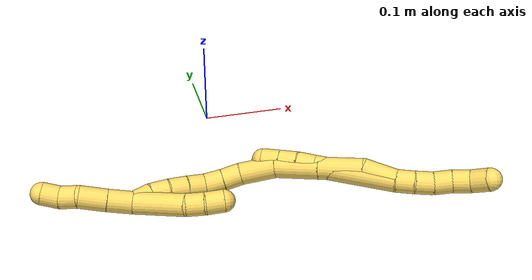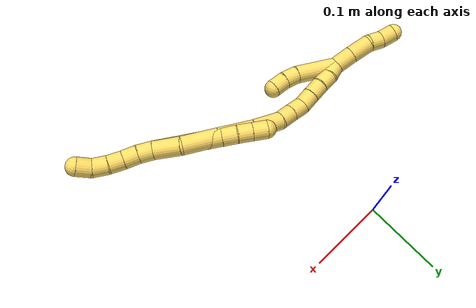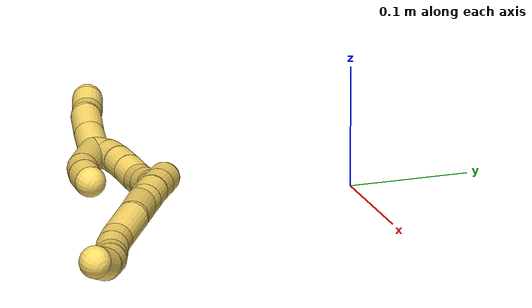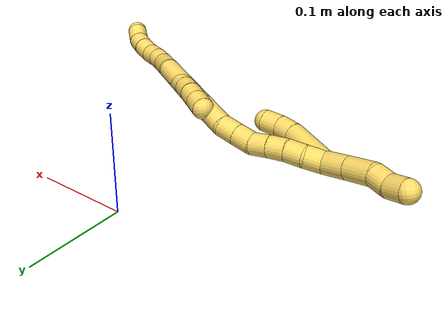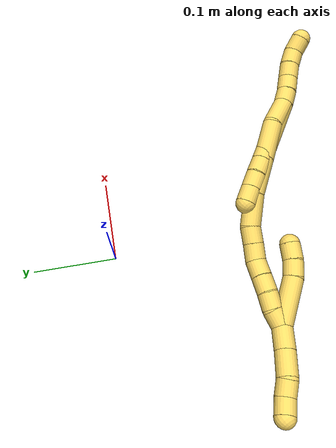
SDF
<sdf version="1.7">
 <world name="default">
  <model name="5">
   <static>0</static>
   <link name="5">
    <collision name="collision-cylinder-e_1_2_8">
     <pose>-0.033735 0.014372 -0.025877 -2.63461 -0.850586 2.10249</pose>
     <geometry><cylinder><radius>0.0125</radius><length>0.089761</length></cylinder></geometry>
     <surface>
      <friction><ode><mu>1.16</mu><mu2>1.16</mu2><slip1>0</slip1><slip2>0</slip2></ode></friction>
      <contact><ode><kp>1e+06</kp><kd>1</kd><max_vel>0</max_vel><min_depth>0.001</min_depth></ode></contact>
     </surface>
    </collision>
    <visual name="visual-cylinder-e_1_2_8">
     <pose>-0.033735 0.014372 -0.025877 -2.63461 -0.850586 2.10249</pose>
     <geometry><cylinder><radius>0.0125</radius><length>0.089761</length></cylinder></geometry>
     <material><ambient>1 0.858824 0.4 1</ambient></material>
    </visual>
    <collision name="collision-cylinder-e_2_8_9">
     <pose>-0.075159 0.031848 -0.057519 -2.64776 -0.865401 2.1425</pose>
     <geometry><cylinder><radius>0.0125</radius><length>0.020196</length></cylinder></geometry>
     <surface>
      <friction><ode><mu>1.16</mu><mu2>1.16</mu2><slip1>0</slip1><slip2>0</slip2></ode></friction>
      <contact><ode><kp>1e+06</kp><kd>1</kd><max_vel>0</max_vel><min_depth>0.001</min_depth></ode></contact>
     </surface>
    </collision>
    <visual name="visual-cylinder-e_2_8_9">
     <pose>-0.075159 0.031848 -0.057519 -2.64776 -0.865401 2.1425</pose>
     <geometry><cylinder><radius>0.0125</radius><length>0.020196</length></cylinder></geometry>
     <material><ambient>1 0.858824 0.4 1</ambient></material>
    </visual>
    <collision name="collision-cylinder-e_3_9_10">
     <pose>-0.090067 0.038986 -0.068912 -2.51958 -0.806276 1.84991</pose>
     <geometry><cylinder><radius>0.0125</radius><length>0.020008</length></cylinder></geometry>
     <surface>
      <friction><ode><mu>1.16</mu><mu2>1.16</mu2><slip1>0</slip1><slip2>0</slip2></ode></friction>
      <contact><ode><kp>1e+06</kp><kd>1</kd><max_vel>0</max_vel><min_depth>0.001</min_depth></ode></contact>
     </surface>
    </collision>
    <visual name="visual-cylinder-e_3_9_10">
     <pose>-0.090067 0.038986 -0.068912 -2.51958 -0.806276 1.84991</pose>
     <geometry><cylinder><radius>0.0125</radius><length>0.020008</length></cylinder></geometry>
     <material><ambient>1 0.858824 0.4 1</ambient></material>
    </visual>
    <collision name="collision-cylinder-e_4_10_6">
     <pose>-0.104512 0.047063 -0.080179 -2.5197 -0.805569 1.84915</pose>
     <geometry><cylinder><radius>0.0125</radius><length>0.020035</length></cylinder></geometry>
     <surface>
      <friction><ode><mu>1.16</mu><mu2>1.16</mu2><slip1>0</slip1><slip2>0</slip2></ode></friction>
      <contact><ode><kp>1e+06</kp><kd>1</kd><max_vel>0</max_vel><min_depth>0.001</min_depth></ode></contact>
     </surface>
    </collision>
    <visual name="visual-cylinder-e_4_10_6">
     <pose>-0.104512 0.047063 -0.080179 -2.5197 -0.805569 1.84915</pose>
     <geometry><cylinder><radius>0.0125</radius><length>0.020035</length></cylinder></geometry>
     <material><ambient>1 0.858824 0.4 1</ambient></material>
    </visual>
    <collision name="collision-cylinder-e_1_2_11">
     <pose>0.0068 -0.003673 0.006346 0.524634 0.747696 0.209892</pose>
     <geometry><cylinder><radius>0.0125</radius><length>0.02</length></cylinder></geometry>
     <surface>
      <friction><ode><mu>1.16</mu><mu2>1.16</mu2><slip1>0</slip1><slip2>0</slip2></ode></friction>
      <contact><ode><kp>1e+06</kp><kd>1</kd><max_vel>0</max_vel><min_depth>0.001</min_depth></ode></contact>
     </surface>
    </collision>
    <visual name="visual-cylinder-e_1_2_11">
     <pose>0.0068 -0.003673 0.006346 0.524634 0.747696 0.209892</pose>
     <geometry><cylinder><radius>0.0125</radius><length>0.02</length></cylinder></geometry>
     <material><ambient>1 0.858824 0.4 1</ambient></material>
    </visual>
    <collision name="collision-cylinder-e_2_11_12">
     <pose>0.019625 -0.010717 0.019926 0.436155 0.646776 0.148269</pose>
     <geometry><cylinder><radius>0.0125</radius><length>0.02</length></cylinder></geometry>
     <surface>
      <friction><ode><mu>1.16</mu><mu2>1.16</mu2><slip1>0</slip1><slip2>0</slip2></ode></friction>
      <contact><ode><kp>1e+06</kp><kd>1</kd><max_vel>0</max_vel><min_depth>0.001</min_depth></ode></contact>
     </surface>
    </collision>
    <visual name="visual-cylinder-e_2_11_12">
     <pose>0.019625 -0.010717 0.019926 0.436155 0.646776 0.148269</pose>
     <geometry><cylinder><radius>0.0125</radius><length>0.02</length></cylinder></geometry>
     <material><ambient>1 0.858824 0.4 1</ambient></material>
    </visual>
    <collision name="collision-cylinder-e_3_12_13">
     <pose>0.031037 -0.019102 0.033931 0.637263 0.568701 0.192229</pose>
     <geometry><cylinder><radius>0.0125</radius><length>0.02</length></cylinder></geometry>
     <surface>
      <friction><ode><mu>1.16</mu><mu2>1.16</mu2><slip1>0</slip1><slip2>0</slip2></ode></friction>
      <contact><ode><kp>1e+06</kp><kd>1</kd><max_vel>0</max_vel><min_depth>0.001</min_depth></ode></contact>
     </surface>
    </collision>
    <visual name="visual-cylinder-e_3_12_13">
     <pose>0.031037 -0.019102 0.033931 0.637263 0.568701 0.192229</pose>
     <geometry><cylinder><radius>0.0125</radius><length>0.02</length></cylinder></geometry>
     <material><ambient>1 0.858824 0.4 1</ambient></material>
    </visual>
    <collision name="collision-cylinder-e_4_13_14">
     <pose>0.042957 -0.028892 0.046576 0.682855 0.712128 0.262793</pose>
     <geometry><cylinder><radius>0.0125</radius><length>0.02</length></cylinder></geometry>
     <surface>
      <friction><ode><mu>1.16</mu><mu2>1.16</mu2><slip1>0</slip1><slip2>0</slip2></ode></friction>
      <contact><ode><kp>1e+06</kp><kd>1</kd><max_vel>0</max_vel><min_depth>0.001</min_depth></ode></contact>
     </surface>
    </collision>
    <visual name="visual-cylinder-e_4_13_14">
     <pose>0.042957 -0.028892 0.046576 0.682855 0.712128 0.262793</pose>
     <geometry><cylinder><radius>0.0125</radius><length>0.02</length></cylinder></geometry>
     <material><ambient>1 0.858824 0.4 1</ambient></material>
    </visual>
    <collision name="collision-cylinder-e_5_14_5">
     <pose>0.056297 -0.040294 0.055576 1.12975 0.748617 0.487999</pose>
     <geometry><cylinder><radius>0.0125</radius><length>0.02</length></cylinder></geometry>
     <surface>
      <friction><ode><mu>1.16</mu><mu2>1.16</mu2><slip1>0</slip1><slip2>0</slip2></ode></friction>
      <contact><ode><kp>1e+06</kp><kd>1</kd><max_vel>0</max_vel><min_depth>0.001</min_depth></ode></contact>
     </surface>
    </collision>
    <visual name="visual-cylinder-e_5_14_5">
     <pose>0.056297 -0.040294 0.055576 1.12975 0.748617 0.487999</pose>
     <geometry><cylinder><radius>0.0125</radius><length>0.02</length></cylinder></geometry>
     <material><ambient>1 0.858824 0.4 1</ambient></material>
    </visual>
    <collision name="collision-cylinder-e_1_2_15">
     <pose>-0.015342 0.003586 -0.009769 -2.78975 -0.974787 2.49443</pose>
     <geometry><cylinder><radius>0.0125</radius><length>0.037077</length></cylinder></geometry>
     <surface>
      <friction><ode><mu>1.16</mu><mu2>1.16</mu2><slip1>0</slip1><slip2>0</slip2></ode></friction>
      <contact><ode><kp>1e+06</kp><kd>1</kd><max_vel>0</max_vel><min_depth>0.001</min_depth></ode></contact>
     </surface>
    </collision>
    <visual name="visual-cylinder-e_1_2_15">
     <pose>-0.015342 0.003586 -0.009769 -2.78975 -0.974787 2.49443</pose>
     <geometry><cylinder><radius>0.0125</radius><length>0.037077</length></cylinder></geometry>
     <material><ambient>1 0.858824 0.4 1</ambient></material>
    </visual>
    <collision name="collision-cylinder-e_2_15_16">
     <pose>-0.046846 0.01758 -0.034746 -2.54149 -0.719964 1.76554</pose>
     <geometry><cylinder><radius>0.0125</radius><length>0.049022</length></cylinder></geometry>
     <surface>
      <friction><ode><mu>1.16</mu><mu2>1.16</mu2><slip1>0</slip1><slip2>0</slip2></ode></friction>
      <contact><ode><kp>1e+06</kp><kd>1</kd><max_vel>0</max_vel><min_depth>0.001</min_depth></ode></contact>
     </surface>
    </collision>
    <visual name="visual-cylinder-e_2_15_16">
     <pose>-0.046846 0.01758 -0.034746 -2.54149 -0.719964 1.76554</pose>
     <geometry><cylinder><radius>0.0125</radius><length>0.049022</length></cylinder></geometry>
     <material><ambient>1 0.858824 0.4 1</ambient></material>
    </visual>
    <collision name="collision-cylinder-e_3_16_17">
     <pose>-0.079161 0.038313 -0.064831 -2.53482 -0.728384 1.76648</pose>
     <geometry><cylinder><radius>0.0125</radius><length>0.048533</length></cylinder></geometry>
     <surface>
      <friction><ode><mu>1.16</mu><mu2>1.16</mu2><slip1>0</slip1><slip2>0</slip2></ode></friction>
      <contact><ode><kp>1e+06</kp><kd>1</kd><max_vel>0</max_vel><min_depth>0.001</min_depth></ode></contact>
     </surface>
    </collision>
    <visual name="visual-cylinder-e_3_16_17">
     <pose>-0.079161 0.038313 -0.064831 -2.53482 -0.728384 1.76648</pose>
     <geometry><cylinder><radius>0.0125</radius><length>0.048533</length></cylinder></geometry>
     <material><ambient>1 0.858824 0.4 1</ambient></material>
    </visual>
    <collision name="collision-cylinder-e_4_17_18">
     <pose>-0.105197 0.060302 -0.092991 -2.42108 -0.509794 1.21028</pose>
     <geometry><cylinder><radius>0.0125</radius><length>0.040504</length></cylinder></geometry>
     <surface>
      <friction><ode><mu>1.16</mu><mu2>1.16</mu2><slip1>0</slip1><slip2>0</slip2></ode></friction>
      <contact><ode><kp>1e+06</kp><kd>1</kd><max_vel>0</max_vel><min_depth>0.001</min_depth></ode></contact>
     </surface>
    </collision>
    <visual name="visual-cylinder-e_4_17_18">
     <pose>-0.105197 0.060302 -0.092991 -2.42108 -0.509794 1.21028</pose>
     <geometry><cylinder><radius>0.0125</radius><length>0.040504</length></cylinder></geometry>
     <material><ambient>1 0.858824 0.4 1</ambient></material>
    </visual>
    <collision name="collision-cylinder-e_5_18_19">
     <pose>-0.117797 0.077497 -0.114864 -2.56935 -0.259879 0.836014</pose>
     <geometry><cylinder><radius>0.0125</radius><length>0.021144</length></cylinder></geometry>
     <surface>
      <friction><ode><mu>1.16</mu><mu2>1.16</mu2><slip1>0</slip1><slip2>0</slip2></ode></friction>
      <contact><ode><kp>1e+06</kp><kd>1</kd><max_vel>0</max_vel><min_depth>0.001</min_depth></ode></contact>
     </surface>
    </collision>
    <visual name="visual-cylinder-e_5_18_19">
     <pose>-0.117797 0.077497 -0.114864 -2.56935 -0.259879 0.836014</pose>
     <geometry><cylinder><radius>0.0125</radius><length>0.021144</length></cylinder></geometry>
     <material><ambient>1 0.858824 0.4 1</ambient></material>
    </visual>
    <collision name="collision-cylinder-e_6_19_20">
     <pose>-0.123897 0.088198 -0.132213 -2.60858 -0.321154 1.07096</pose>
     <geometry><cylinder><radius>0.0125</radius><length>0.021439</length></cylinder></geometry>
     <surface>
      <friction><ode><mu>1.16</mu><mu2>1.16</mu2><slip1>0</slip1><slip2>0</slip2></ode></friction>
      <contact><ode><kp>1e+06</kp><kd>1</kd><max_vel>0</max_vel><min_depth>0.001</min_depth></ode></contact>
     </surface>
    </collision>
    <visual name="visual-cylinder-e_6_19_20">
     <pose>-0.123897 0.088198 -0.132213 -2.60858 -0.321154 1.07096</pose>
     <geometry><cylinder><radius>0.0125</radius><length>0.021439</length></cylinder></geometry>
     <material><ambient>1 0.858824 0.4 1</ambient></material>
    </visual>
    <collision name="collision-cylinder-e_7_20_21">
     <pose>-0.129702 0.095369 -0.150746 -2.93948 -0.238132 1.73536</pose>
     <geometry><cylinder><radius>0.0125</radius><length>0.02053</length></cylinder></geometry>
     <surface>
      <friction><ode><mu>1.16</mu><mu2>1.16</mu2><slip1>0</slip1><slip2>0</slip2></ode></friction>
      <contact><ode><kp>1e+06</kp><kd>1</kd><max_vel>0</max_vel><min_depth>0.001</min_depth></ode></contact>
     </surface>
    </collision>
    <visual name="visual-cylinder-e_7_20_21">
     <pose>-0.129702 0.095369 -0.150746 -2.93948 -0.238132 1.73536</pose>
     <geometry><cylinder><radius>0.0125</radius><length>0.02053</length></cylinder></geometry>
     <material><ambient>1 0.858824 0.4 1</ambient></material>
    </visual>
    <collision name="collision-cylinder-e_8_21_22">
     <pose>-0.13442 0.099823 -0.170131 -2.89182 -0.227468 1.47652</pose>
     <geometry><cylinder><radius>0.0125</radius><length>0.020367</length></cylinder></geometry>
     <surface>
      <friction><ode><mu>1.16</mu><mu2>1.16</mu2><slip1>0</slip1><slip2>0</slip2></ode></friction>
      <contact><ode><kp>1e+06</kp><kd>1</kd><max_vel>0</max_vel><min_depth>0.001</min_depth></ode></contact>
     </surface>
    </collision>
    <visual name="visual-cylinder-e_8_21_22">
     <pose>-0.13442 0.099823 -0.170131 -2.89182 -0.227468 1.47652</pose>
     <geometry><cylinder><radius>0.0125</radius><length>0.020367</length></cylinder></geometry>
     <material><ambient>1 0.858824 0.4 1</ambient></material>
    </visual>
    <collision name="collision-cylinder-e_9_22_23">
     <pose>-0.139001 0.105827 -0.188955 -2.77359 -0.227436 1.10083</pose>
     <geometry><cylinder><radius>0.0125</radius><length>0.020264</length></cylinder></geometry>
     <surface>
      <friction><ode><mu>1.16</mu><mu2>1.16</mu2><slip1>0</slip1><slip2>0</slip2></ode></friction>
      <contact><ode><kp>1e+06</kp><kd>1</kd><max_vel>0</max_vel><min_depth>0.001</min_depth></ode></contact>
     </surface>
    </collision>
    <visual name="visual-cylinder-e_9_22_23">
     <pose>-0.139001 0.105827 -0.188955 -2.77359 -0.227436 1.10083</pose>
     <geometry><cylinder><radius>0.0125</radius><length>0.020264</length></cylinder></geometry>
     <material><ambient>1 0.858824 0.4 1</ambient></material>
    </visual>
    <collision name="collision-cylinder-e_10_23_1">
     <pose>-0.141015 0.113476 -0.207894 -2.74292 0.025587 -0.126496</pose>
     <geometry><cylinder><radius>0.0125</radius><length>0.02112</length></cylinder></geometry>
     <surface>
      <friction><ode><mu>1.16</mu><mu2>1.16</mu2><slip1>0</slip1><slip2>0</slip2></ode></friction>
      <contact><ode><kp>1e+06</kp><kd>1</kd><max_vel>0</max_vel><min_depth>0.001</min_depth></ode></contact>
     </surface>
    </collision>
    <visual name="visual-cylinder-e_10_23_1">
     <pose>-0.141015 0.113476 -0.207894 -2.74292 0.025587 -0.126496</pose>
     <geometry><cylinder><radius>0.0125</radius><length>0.02112</length></cylinder></geometry>
     <material><ambient>1 0.858824 0.4 1</ambient></material>
    </visual>
    <collision name="collision-cylinder-e_1_1_24">
     <pose>-0.147761 0.119759 -0.230105 -2.96833 -0.50564 2.493</pose>
     <geometry><cylinder><radius>0.0125</radius><length>0.028969</length></cylinder></geometry>
     <surface>
      <friction><ode><mu>1.16</mu><mu2>1.16</mu2><slip1>0</slip1><slip2>0</slip2></ode></friction>
      <contact><ode><kp>1e+06</kp><kd>1</kd><max_vel>0</max_vel><min_depth>0.001</min_depth></ode></contact>
     </surface>
    </collision>
    <visual name="visual-cylinder-e_1_1_24">
     <pose>-0.147761 0.119759 -0.230105 -2.96833 -0.50564 2.493</pose>
     <geometry><cylinder><radius>0.0125</radius><length>0.028969</length></cylinder></geometry>
     <material><ambient>1 0.858824 0.4 1</ambient></material>
    </visual>
    <collision name="collision-cylinder-e_2_24_25">
     <pose>-0.162832 0.124101 -0.255395 -2.97474 -0.555151 2.57066</pose>
     <geometry><cylinder><radius>0.0125</radius><length>0.030567</length></cylinder></geometry>
     <surface>
      <friction><ode><mu>1.16</mu><mu2>1.16</mu2><slip1>0</slip1><slip2>0</slip2></ode></friction>
      <contact><ode><kp>1e+06</kp><kd>1</kd><max_vel>0</max_vel><min_depth>0.001</min_depth></ode></contact>
     </surface>
    </collision>
    <visual name="visual-cylinder-e_2_24_25">
     <pose>-0.162832 0.124101 -0.255395 -2.97474 -0.555151 2.57066</pose>
     <geometry><cylinder><radius>0.0125</radius><length>0.030567</length></cylinder></geometry>
     <material><ambient>1 0.858824 0.4 1</ambient></material>
    </visual>
    <collision name="collision-cylinder-e_3_25_26">
     <pose>-0.176681 0.130671 -0.275077 -2.57082 -0.616829 1.65306</pose>
     <geometry><cylinder><radius>0.0125</radius><length>0.020029</length></cylinder></geometry>
     <surface>
      <friction><ode><mu>1.16</mu><mu2>1.16</mu2><slip1>0</slip1><slip2>0</slip2></ode></friction>
      <contact><ode><kp>1e+06</kp><kd>1</kd><max_vel>0</max_vel><min_depth>0.001</min_depth></ode></contact>
     </surface>
    </collision>
    <visual name="visual-cylinder-e_3_25_26">
     <pose>-0.176681 0.130671 -0.275077 -2.57082 -0.616829 1.65306</pose>
     <geometry><cylinder><radius>0.0125</radius><length>0.020029</length></cylinder></geometry>
     <material><ambient>1 0.858824 0.4 1</ambient></material>
    </visual>
    <collision name="collision-cylinder-e_4_26_4">
     <pose>-0.188662 0.136318 -0.289987 -2.98933 -0.6506 2.69676</pose>
     <geometry><cylinder><radius>0.0125</radius><length>0.020435</length></cylinder></geometry>
     <surface>
      <friction><ode><mu>1.16</mu><mu2>1.16</mu2><slip1>0</slip1><slip2>0</slip2></ode></friction>
      <contact><ode><kp>1e+06</kp><kd>1</kd><max_vel>0</max_vel><min_depth>0.001</min_depth></ode></contact>
     </surface>
    </collision>
    <visual name="visual-cylinder-e_4_26_4">
     <pose>-0.188662 0.136318 -0.289987 -2.98933 -0.6506 2.69676</pose>
     <geometry><cylinder><radius>0.0125</radius><length>0.020435</length></cylinder></geometry>
     <material><ambient>1 0.858824 0.4 1</ambient></material>
    </visual>
    <collision name="collision-cylinder-e_1_1_27">
     <pose>-0.121151 0.105016 -0.199315 0.601217 0.723107 0.233407</pose>
     <geometry><cylinder><radius>0.0125</radius><length>0.059222</length></cylinder></geometry>
     <surface>
      <friction><ode><mu>1.16</mu><mu2>1.16</mu2><slip1>0</slip1><slip2>0</slip2></ode></friction>
      <contact><ode><kp>1e+06</kp><kd>1</kd><max_vel>0</max_vel><min_depth>0.001</min_depth></ode></contact>
     </surface>
    </collision>
    <visual name="visual-cylinder-e_1_1_27">
     <pose>-0.121151 0.105016 -0.199315 0.601217 0.723107 0.233407</pose>
     <geometry><cylinder><radius>0.0125</radius><length>0.059222</length></cylinder></geometry>
     <material><ambient>1 0.858824 0.4 1</ambient></material>
    </visual>
    <collision name="collision-cylinder-e_2_27_28">
     <pose>-0.096602 0.088399 -0.173104 0.474573 0.508726 0.12559</pose>
     <geometry><cylinder><radius>0.0125</radius><length>0.020344</length></cylinder></geometry>
     <surface>
      <friction><ode><mu>1.16</mu><mu2>1.16</mu2><slip1>0</slip1><slip2>0</slip2></ode></friction>
      <contact><ode><kp>1e+06</kp><kd>1</kd><max_vel>0</max_vel><min_depth>0.001</min_depth></ode></contact>
     </surface>
    </collision>
    <visual name="visual-cylinder-e_2_27_28">
     <pose>-0.096602 0.088399 -0.173104 0.474573 0.508726 0.12559</pose>
     <geometry><cylinder><radius>0.0125</radius><length>0.020344</length></cylinder></geometry>
     <material><ambient>1 0.858824 0.4 1</ambient></material>
    </visual>
    <collision name="collision-cylinder-e_3_28_3">
     <pose>-0.088063 0.080782 -0.156321 0.38102 0.358554 0.069869</pose>
     <geometry><cylinder><radius>0.0125</radius><length>0.020434</length></cylinder></geometry>
     <surface>
      <friction><ode><mu>1.16</mu><mu2>1.16</mu2><slip1>0</slip1><slip2>0</slip2></ode></friction>
      <contact><ode><kp>1e+06</kp><kd>1</kd><max_vel>0</max_vel><min_depth>0.001</min_depth></ode></contact>
     </surface>
    </collision>
    <visual name="visual-cylinder-e_3_28_3">
     <pose>-0.088063 0.080782 -0.156321 0.38102 0.358554 0.069869</pose>
     <geometry><cylinder><radius>0.0125</radius><length>0.020434</length></cylinder></geometry>
     <material><ambient>1 0.858824 0.4 1</ambient></material>
    </visual>
    <collision name="collision-sphere-3">
     <pose>-0.084477 0.077224 -0.14744 0 -0 0</pose>
     <geometry><sphere><radius>0.0125</radius></sphere></geometry>
     <surface>
      <friction><ode><mu>1.16</mu><mu2>1.16</mu2><slip1>0</slip1><slip2>0</slip2></ode></friction>
      <contact><ode><kp>1e+06</kp><kd>1</kd><max_vel>0</max_vel><min_depth>0.001</min_depth></ode></contact>
     </surface>
    </collision>
    <visual name="visual-sphere-3">
     <pose>-0.084477 0.077224 -0.14744 0 -0 0</pose>
     <geometry><sphere><radius>0.0125</radius></sphere></geometry>
     <material><ambient>1 0.858824 0.4 1</ambient></material>
    </visual>
    <collision name="collision-sphere-28">
     <pose>-0.091648 0.084339 -0.165202 0 -0 0</pose>
     <geometry><sphere><radius>0.0125</radius></sphere></geometry>
     <surface>
      <friction><ode><mu>1.16</mu><mu2>1.16</mu2><slip1>0</slip1><slip2>0</slip2></ode></friction>
      <contact><ode><kp>1e+06</kp><kd>1</kd><max_vel>0</max_vel><min_depth>0.001</min_depth></ode></contact>
     </surface>
    </collision>
    <visual name="visual-sphere-28">
     <pose>-0.091648 0.084339 -0.165202 0 -0 0</pose>
     <geometry><sphere><radius>0.0125</radius></sphere></geometry>
     <material><ambient>1 0.858824 0.4 1</ambient></material>
    </visual>
    <collision name="collision-sphere-27">
     <pose>-0.101557 0.092459 -0.181007 0 -0 0</pose>
     <geometry><sphere><radius>0.0125</radius></sphere></geometry>
     <surface>
      <friction><ode><mu>1.16</mu><mu2>1.16</mu2><slip1>0</slip1><slip2>0</slip2></ode></friction>
      <contact><ode><kp>1e+06</kp><kd>1</kd><max_vel>0</max_vel><min_depth>0.001</min_depth></ode></contact>
     </surface>
    </collision>
    <visual name="visual-sphere-27">
     <pose>-0.101557 0.092459 -0.181007 0 -0 0</pose>
     <geometry><sphere><radius>0.0125</radius></sphere></geometry>
     <material><ambient>1 0.858824 0.4 1</ambient></material>
    </visual>
    <collision name="collision-sphere-4">
     <pose>-0.19485 0.137551 -0.298023 0 -0 0</pose>
     <geometry><sphere><radius>0.0125</radius></sphere></geometry>
     <surface>
      <friction><ode><mu>1.16</mu><mu2>1.16</mu2><slip1>0</slip1><slip2>0</slip2></ode></friction>
      <contact><ode><kp>1e+06</kp><kd>1</kd><max_vel>0</max_vel><min_depth>0.001</min_depth></ode></contact>
     </surface>
    </collision>
    <visual name="visual-sphere-4">
     <pose>-0.19485 0.137551 -0.298023 0 -0 0</pose>
     <geometry><sphere><radius>0.0125</radius></sphere></geometry>
     <material><ambient>1 0.858824 0.4 1</ambient></material>
    </visual>
    <collision name="collision-sphere-26">
     <pose>-0.182474 0.135085 -0.281951 0 -0 0</pose>
     <geometry><sphere><radius>0.0125</radius></sphere></geometry>
     <surface>
      <friction><ode><mu>1.16</mu><mu2>1.16</mu2><slip1>0</slip1><slip2>0</slip2></ode></friction>
      <contact><ode><kp>1e+06</kp><kd>1</kd><max_vel>0</max_vel><min_depth>0.001</min_depth></ode></contact>
     </surface>
    </collision>
    <visual name="visual-sphere-26">
     <pose>-0.182474 0.135085 -0.281951 0 -0 0</pose>
     <geometry><sphere><radius>0.0125</radius></sphere></geometry>
     <material><ambient>1 0.858824 0.4 1</ambient></material>
    </visual>
    <collision name="collision-sphere-25">
     <pose>-0.170888 0.126258 -0.268203 0 -0 0</pose>
     <geometry><sphere><radius>0.0125</radius></sphere></geometry>
     <surface>
      <friction><ode><mu>1.16</mu><mu2>1.16</mu2><slip1>0</slip1><slip2>0</slip2></ode></friction>
      <contact><ode><kp>1e+06</kp><kd>1</kd><max_vel>0</max_vel><min_depth>0.001</min_depth></ode></contact>
     </surface>
    </collision>
    <visual name="visual-sphere-25">
     <pose>-0.170888 0.126258 -0.268203 0 -0 0</pose>
     <geometry><sphere><radius>0.0125</radius></sphere></geometry>
     <material><ambient>1 0.858824 0.4 1</ambient></material>
    </visual>
    <collision name="collision-sphere-24">
     <pose>-0.154777 0.121943 -0.242587 0 -0 0</pose>
     <geometry><sphere><radius>0.0125</radius></sphere></geometry>
     <surface>
      <friction><ode><mu>1.16</mu><mu2>1.16</mu2><slip1>0</slip1><slip2>0</slip2></ode></friction>
      <contact><ode><kp>1e+06</kp><kd>1</kd><max_vel>0</max_vel><min_depth>0.001</min_depth></ode></contact>
     </surface>
    </collision>
    <visual name="visual-sphere-24">
     <pose>-0.154777 0.121943 -0.242587 0 -0 0</pose>
     <geometry><sphere><radius>0.0125</radius></sphere></geometry>
     <material><ambient>1 0.858824 0.4 1</ambient></material>
    </visual>
    <collision name="collision-sphere-1">
     <pose>-0.140745 0.117574 -0.217623 0 -0 0</pose>
     <geometry><sphere><radius>0.0125</radius></sphere></geometry>
     <surface>
      <friction><ode><mu>1.16</mu><mu2>1.16</mu2><slip1>0</slip1><slip2>0</slip2></ode></friction>
      <contact><ode><kp>1e+06</kp><kd>1</kd><max_vel>0</max_vel><min_depth>0.001</min_depth></ode></contact>
     </surface>
    </collision>
    <visual name="visual-sphere-1">
     <pose>-0.140745 0.117574 -0.217623 0 -0 0</pose>
     <geometry><sphere><radius>0.0125</radius></sphere></geometry>
     <material><ambient>1 0.858824 0.4 1</ambient></material>
    </visual>
    <collision name="collision-sphere-23">
     <pose>-0.141286 0.109378 -0.198165 0 -0 0</pose>
     <geometry><sphere><radius>0.0125</radius></sphere></geometry>
     <surface>
      <friction><ode><mu>1.16</mu><mu2>1.16</mu2><slip1>0</slip1><slip2>0</slip2></ode></friction>
      <contact><ode><kp>1e+06</kp><kd>1</kd><max_vel>0</max_vel><min_depth>0.001</min_depth></ode></contact>
     </surface>
    </collision>
    <visual name="visual-sphere-23">
     <pose>-0.141286 0.109378 -0.198165 0 -0 0</pose>
     <geometry><sphere><radius>0.0125</radius></sphere></geometry>
     <material><ambient>1 0.858824 0.4 1</ambient></material>
    </visual>
    <collision name="collision-sphere-22">
     <pose>-0.136716 0.102276 -0.179744 0 -0 0</pose>
     <geometry><sphere><radius>0.0125</radius></sphere></geometry>
     <surface>
      <friction><ode><mu>1.16</mu><mu2>1.16</mu2><slip1>0</slip1><slip2>0</slip2></ode></friction>
      <contact><ode><kp>1e+06</kp><kd>1</kd><max_vel>0</max_vel><min_depth>0.001</min_depth></ode></contact>
     </surface>
    </collision>
    <visual name="visual-sphere-22">
     <pose>-0.136716 0.102276 -0.179744 0 -0 0</pose>
     <geometry><sphere><radius>0.0125</radius></sphere></geometry>
     <material><ambient>1 0.858824 0.4 1</ambient></material>
    </visual>
    <collision name="collision-sphere-21">
     <pose>-0.132123 0.097371 -0.160518 0 -0 0</pose>
     <geometry><sphere><radius>0.0125</radius></sphere></geometry>
     <surface>
      <friction><ode><mu>1.16</mu><mu2>1.16</mu2><slip1>0</slip1><slip2>0</slip2></ode></friction>
      <contact><ode><kp>1e+06</kp><kd>1</kd><max_vel>0</max_vel><min_depth>0.001</min_depth></ode></contact>
     </surface>
    </collision>
    <visual name="visual-sphere-21">
     <pose>-0.132123 0.097371 -0.160518 0 -0 0</pose>
     <geometry><sphere><radius>0.0125</radius></sphere></geometry>
     <material><ambient>1 0.858824 0.4 1</ambient></material>
    </visual>
    <collision name="collision-sphere-11">
     <pose>0.013599 -0.007346 0.012693 0 -0 0</pose>
     <geometry><sphere><radius>0.0125</radius></sphere></geometry>
     <surface>
      <friction><ode><mu>1.16</mu><mu2>1.16</mu2><slip1>0</slip1><slip2>0</slip2></ode></friction>
      <contact><ode><kp>1e+06</kp><kd>1</kd><max_vel>0</max_vel><min_depth>0.001</min_depth></ode></contact>
     </surface>
    </collision>
    <visual name="visual-sphere-11">
     <pose>0.013599 -0.007346 0.012693 0 -0 0</pose>
     <geometry><sphere><radius>0.0125</radius></sphere></geometry>
     <material><ambient>1 0.858824 0.4 1</ambient></material>
    </visual>
    <collision name="collision-sphere-6">
     <pose>-0.111737 0.051106 -0.085819 0 -0 0</pose>
     <geometry><sphere><radius>0.0125</radius></sphere></geometry>
     <surface>
      <friction><ode><mu>1.16</mu><mu2>1.16</mu2><slip1>0</slip1><slip2>0</slip2></ode></friction>
      <contact><ode><kp>1e+06</kp><kd>1</kd><max_vel>0</max_vel><min_depth>0.001</min_depth></ode></contact>
     </surface>
    </collision>
    <visual name="visual-sphere-6">
     <pose>-0.111737 0.051106 -0.085819 0 -0 0</pose>
     <geometry><sphere><radius>0.0125</radius></sphere></geometry>
     <material><ambient>1 0.858824 0.4 1</ambient></material>
    </visual>
    <collision name="collision-sphere-10">
     <pose>-0.097287 0.043021 -0.07454 0 -0 0</pose>
     <geometry><sphere><radius>0.0125</radius></sphere></geometry>
     <surface>
      <friction><ode><mu>1.16</mu><mu2>1.16</mu2><slip1>0</slip1><slip2>0</slip2></ode></friction>
      <contact><ode><kp>1e+06</kp><kd>1</kd><max_vel>0</max_vel><min_depth>0.001</min_depth></ode></contact>
     </surface>
    </collision>
    <visual name="visual-sphere-10">
     <pose>-0.097287 0.043021 -0.07454 0 -0 0</pose>
     <geometry><sphere><radius>0.0125</radius></sphere></geometry>
     <material><ambient>1 0.858824 0.4 1</ambient></material>
    </visual>
    <collision name="collision-sphere-9">
     <pose>-0.082847 0.034951 -0.063284 0 -0 0</pose>
     <geometry><sphere><radius>0.0125</radius></sphere></geometry>
     <surface>
      <friction><ode><mu>1.16</mu><mu2>1.16</mu2><slip1>0</slip1><slip2>0</slip2></ode></friction>
      <contact><ode><kp>1e+06</kp><kd>1</kd><max_vel>0</max_vel><min_depth>0.001</min_depth></ode></contact>
     </surface>
    </collision>
    <visual name="visual-sphere-9">
     <pose>-0.082847 0.034951 -0.063284 0 -0 0</pose>
     <geometry><sphere><radius>0.0125</radius></sphere></geometry>
     <material><ambient>1 0.858824 0.4 1</ambient></material>
    </visual>
    <collision name="collision-sphere-2">
     <geometry><sphere><radius>0.0125</radius></sphere></geometry>
     <surface>
      <friction><ode><mu>1.16</mu><mu2>1.16</mu2><slip1>0</slip1><slip2>0</slip2></ode></friction>
      <contact><ode><kp>1e+06</kp><kd>1</kd><max_vel>0</max_vel><min_depth>0.001</min_depth></ode></contact>
     </surface>
    </collision>
    <visual name="visual-sphere-2">
     <geometry><sphere><radius>0.0125</radius></sphere></geometry>
     <material><ambient>1 0.858824 0.4 1</ambient></material>
    </visual>
    <collision name="collision-sphere-19">
     <pose>-0.120513 0.08303 -0.123453 0 -0 0</pose>
     <geometry><sphere><radius>0.0125</radius></sphere></geometry>
     <surface>
      <friction><ode><mu>1.16</mu><mu2>1.16</mu2><slip1>0</slip1><slip2>0</slip2></ode></friction>
      <contact><ode><kp>1e+06</kp><kd>1</kd><max_vel>0</max_vel><min_depth>0.001</min_depth></ode></contact>
     </surface>
    </collision>
    <visual name="visual-sphere-19">
     <pose>-0.120513 0.08303 -0.123453 0 -0 0</pose>
     <geometry><sphere><radius>0.0125</radius></sphere></geometry>
     <material><ambient>1 0.858824 0.4 1</ambient></material>
    </visual>
    <collision name="collision-sphere-8">
     <pose>-0.067471 0.028745 -0.051755 0 -0 0</pose>
     <geometry><sphere><radius>0.0125</radius></sphere></geometry>
     <surface>
      <friction><ode><mu>1.16</mu><mu2>1.16</mu2><slip1>0</slip1><slip2>0</slip2></ode></friction>
      <contact><ode><kp>1e+06</kp><kd>1</kd><max_vel>0</max_vel><min_depth>0.001</min_depth></ode></contact>
     </surface>
    </collision>
    <visual name="visual-sphere-8">
     <pose>-0.067471 0.028745 -0.051755 0 -0 0</pose>
     <geometry><sphere><radius>0.0125</radius></sphere></geometry>
     <material><ambient>1 0.858824 0.4 1</ambient></material>
    </visual>
    <collision name="collision-sphere-12">
     <pose>0.025651 -0.014088 0.027159 0 -0 0</pose>
     <geometry><sphere><radius>0.0125</radius></sphere></geometry>
     <surface>
      <friction><ode><mu>1.16</mu><mu2>1.16</mu2><slip1>0</slip1><slip2>0</slip2></ode></friction>
      <contact><ode><kp>1e+06</kp><kd>1</kd><max_vel>0</max_vel><min_depth>0.001</min_depth></ode></contact>
     </surface>
    </collision>
    <visual name="visual-sphere-12">
     <pose>0.025651 -0.014088 0.027159 0 -0 0</pose>
     <geometry><sphere><radius>0.0125</radius></sphere></geometry>
     <material><ambient>1 0.858824 0.4 1</ambient></material>
    </visual>
    <collision name="collision-sphere-13">
     <pose>0.036422 -0.024115 0.040704 0 -0 0</pose>
     <geometry><sphere><radius>0.0125</radius></sphere></geometry>
     <surface>
      <friction><ode><mu>1.16</mu><mu2>1.16</mu2><slip1>0</slip1><slip2>0</slip2></ode></friction>
      <contact><ode><kp>1e+06</kp><kd>1</kd><max_vel>0</max_vel><min_depth>0.001</min_depth></ode></contact>
     </surface>
    </collision>
    <visual name="visual-sphere-13">
     <pose>0.036422 -0.024115 0.040704 0 -0 0</pose>
     <geometry><sphere><radius>0.0125</radius></sphere></geometry>
     <material><ambient>1 0.858824 0.4 1</ambient></material>
    </visual>
    <collision name="collision-sphere-14">
     <pose>0.049491 -0.033668 0.052448 0 -0 0</pose>
     <geometry><sphere><radius>0.0125</radius></sphere></geometry>
     <surface>
      <friction><ode><mu>1.16</mu><mu2>1.16</mu2><slip1>0</slip1><slip2>0</slip2></ode></friction>
      <contact><ode><kp>1e+06</kp><kd>1</kd><max_vel>0</max_vel><min_depth>0.001</min_depth></ode></contact>
     </surface>
    </collision>
    <visual name="visual-sphere-14">
     <pose>0.049491 -0.033668 0.052448 0 -0 0</pose>
     <geometry><sphere><radius>0.0125</radius></sphere></geometry>
     <material><ambient>1 0.858824 0.4 1</ambient></material>
    </visual>
    <collision name="collision-sphere-5">
     <pose>0.063104 -0.046919 0.058703 0 -0 0</pose>
     <geometry><sphere><radius>0.0125</radius></sphere></geometry>
     <surface>
      <friction><ode><mu>1.16</mu><mu2>1.16</mu2><slip1>0</slip1><slip2>0</slip2></ode></friction>
      <contact><ode><kp>1e+06</kp><kd>1</kd><max_vel>0</max_vel><min_depth>0.001</min_depth></ode></contact>
     </surface>
    </collision>
    <visual name="visual-sphere-5">
     <pose>0.063104 -0.046919 0.058703 0 -0 0</pose>
     <geometry><sphere><radius>0.0125</radius></sphere></geometry>
     <material><ambient>1 0.858824 0.4 1</ambient></material>
    </visual>
    <collision name="collision-sphere-15">
     <pose>-0.030685 0.007173 -0.019538 0 -0 0</pose>
     <geometry><sphere><radius>0.0125</radius></sphere></geometry>
     <surface>
      <friction><ode><mu>1.16</mu><mu2>1.16</mu2><slip1>0</slip1><slip2>0</slip2></ode></friction>
      <contact><ode><kp>1e+06</kp><kd>1</kd><max_vel>0</max_vel><min_depth>0.001</min_depth></ode></contact>
     </surface>
    </collision>
    <visual name="visual-sphere-15">
     <pose>-0.030685 0.007173 -0.019538 0 -0 0</pose>
     <geometry><sphere><radius>0.0125</radius></sphere></geometry>
     <material><ambient>1 0.858824 0.4 1</ambient></material>
    </visual>
    <collision name="collision-sphere-16">
     <pose>-0.063007 0.027987 -0.049954 0 -0 0</pose>
     <geometry><sphere><radius>0.0125</radius></sphere></geometry>
     <surface>
      <friction><ode><mu>1.16</mu><mu2>1.16</mu2><slip1>0</slip1><slip2>0</slip2></ode></friction>
      <contact><ode><kp>1e+06</kp><kd>1</kd><max_vel>0</max_vel><min_depth>0.001</min_depth></ode></contact>
     </surface>
    </collision>
    <visual name="visual-sphere-16">
     <pose>-0.063007 0.027987 -0.049954 0 -0 0</pose>
     <geometry><sphere><radius>0.0125</radius></sphere></geometry>
     <material><ambient>1 0.858824 0.4 1</ambient></material>
    </visual>
    <collision name="collision-sphere-17">
     <pose>-0.095314 0.048639 -0.079707 0 -0 0</pose>
     <geometry><sphere><radius>0.0125</radius></sphere></geometry>
     <surface>
      <friction><ode><mu>1.16</mu><mu2>1.16</mu2><slip1>0</slip1><slip2>0</slip2></ode></friction>
      <contact><ode><kp>1e+06</kp><kd>1</kd><max_vel>0</max_vel><min_depth>0.001</min_depth></ode></contact>
     </surface>
    </collision>
    <visual name="visual-sphere-17">
     <pose>-0.095314 0.048639 -0.079707 0 -0 0</pose>
     <geometry><sphere><radius>0.0125</radius></sphere></geometry>
     <material><ambient>1 0.858824 0.4 1</ambient></material>
    </visual>
    <collision name="collision-sphere-18">
     <pose>-0.11508 0.071964 -0.106274 0 -0 0</pose>
     <geometry><sphere><radius>0.0125</radius></sphere></geometry>
     <surface>
      <friction><ode><mu>1.16</mu><mu2>1.16</mu2><slip1>0</slip1><slip2>0</slip2></ode></friction>
      <contact><ode><kp>1e+06</kp><kd>1</kd><max_vel>0</max_vel><min_depth>0.001</min_depth></ode></contact>
     </surface>
    </collision>
    <visual name="visual-sphere-18">
     <pose>-0.11508 0.071964 -0.106274 0 -0 0</pose>
     <geometry><sphere><radius>0.0125</radius></sphere></geometry>
     <material><ambient>1 0.858824 0.4 1</ambient></material>
    </visual>
    <collision name="collision-sphere-20">
     <pose>-0.127281 0.093366 -0.140974 0 -0 0</pose>
     <geometry><sphere><radius>0.0125</radius></sphere></geometry>
     <surface>
      <friction><ode><mu>1.16</mu><mu2>1.16</mu2><slip1>0</slip1><slip2>0</slip2></ode></friction>
      <contact><ode><kp>1e+06</kp><kd>1</kd><max_vel>0</max_vel><min_depth>0.001</min_depth></ode></contact>
     </surface>
    </collision>
    <visual name="visual-sphere-20">
     <pose>-0.127281 0.093366 -0.140974 0 -0 0</pose>
     <geometry><sphere><radius>0.0125</radius></sphere></geometry>
     <material><ambient>1 0.858824 0.4 1</ambient></material>
    </visual>
    <inertial>
     <pose>-0.080279 0.05506 -0.102228 0 -0 0</pose>
     <mass>0.75</mass>
     <inertia><ixx>6e-05</ixx><ixy>0</ixy><ixz>0</ixz><iyy>0.000188</iyy><iyz>0</iyz><izz>1.4e-05</izz></inertia>
    </inertial>
   </link>
   <pose>0.159891 -0.244611 0.035857 -1.82272 0.240183 -1.24367</pose>
  </model>
 </world>
</sdf>
